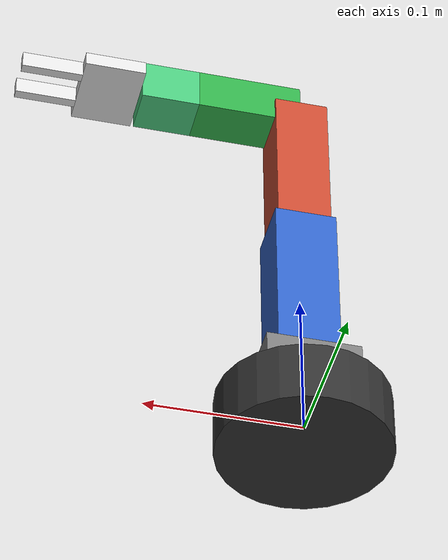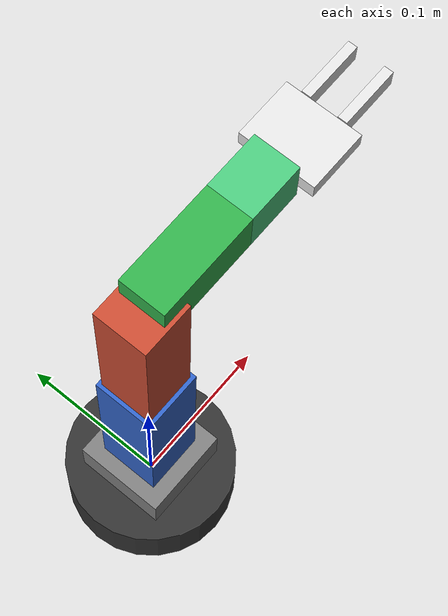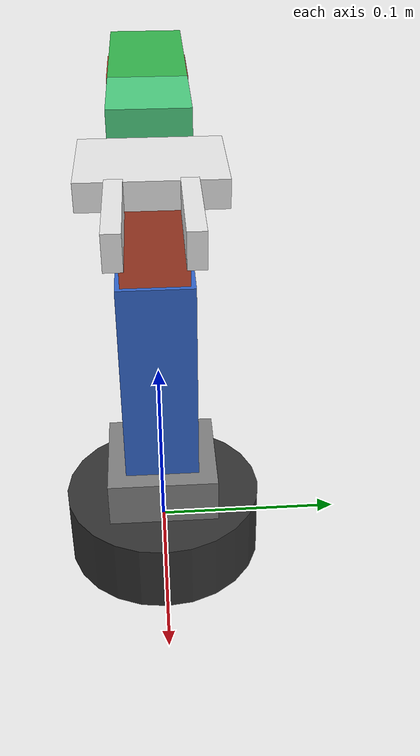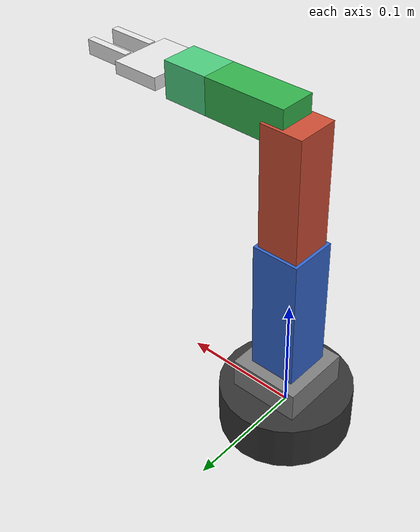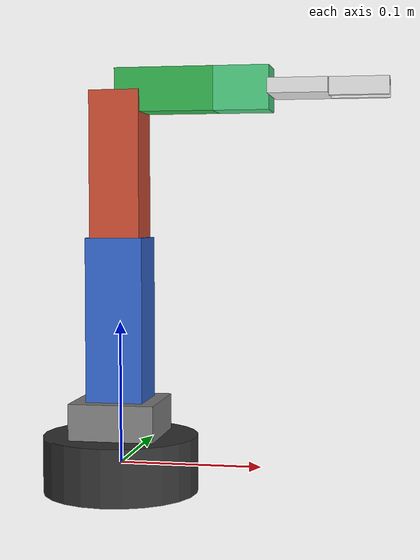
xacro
<?xml version="1.0"?>
<robot name="smallhammer" xmlns:xacro="http://www.ros.org/wiki/xacro">

  <!-- ============================================================
       PROPERTIES — measured dimensions (center-to-center)
       ============================================================ -->

  <xacro:property name="j1_j2" value="0.0254"/>   <!-- 1.0 in -->
  <xacro:property name="j2_j3" value="0.1143"/>   <!-- 4.5 in -->
  <xacro:property name="j3_j4" value="0.1016"/>   <!-- 4.0 in -->
  <xacro:property name="j4_j5" value="0.0686"/>   <!-- 2.7 in -->
  <xacro:property name="j5_j6" value="0.0381"/>   <!-- 1.5 in -->

  <xacro:property name="base_radius" value="0.055"/>
  <xacro:property name="base_length" value="0.04"/>
  <xacro:property name="base_mass" value="0.30"/>

  <xacro:property name="link1_side" value="0.06"/>
  <xacro:property name="link1_mass" value="0.10"/>

  <xacro:property name="link2_side" value="0.04"/>
  <xacro:property name="link2_mass" value="0.20"/>

  <xacro:property name="link3_side" value="0.035"/>
  <xacro:property name="link3_mass" value="0.15"/>

  <xacro:property name="link4_h" value="0.03"/>
  <xacro:property name="link4_mass" value="0.08"/>

  <xacro:property name="link5_h" value="0.03"/>
  <xacro:property name="link5_mass" value="0.06"/>

  <xacro:property name="gripper_x" value="0.04"/>
  <xacro:property name="gripper_y" value="0.05"/>
  <xacro:property name="gripper_z" value="0.01"/>
  <xacro:property name="gripper_mass" value="0.03"/>

  <xacro:property name="finger_x" value="0.04"/>
  <xacro:property name="finger_y" value="0.006"/>
  <xacro:property name="finger_z" value="0.012"/>
  <xacro:property name="finger_mass" value="0.01"/>

  <xacro:property name="rev_lower" value="-1.5708"/>
  <xacro:property name="rev_upper" value="1.5708"/>
  <xacro:property name="rev_effort" value="1.08"/>
  <xacro:property name="rev_velocity" value="6.98"/>

  <xacro:property name="grip_lower" value="0.0"/>
  <xacro:property name="grip_upper" value="0.02"/>
  <xacro:property name="grip_effort" value="5"/>
  <xacro:property name="grip_velocity" value="0.05"/>

  <!-- ============================================================
       MACROS — inertia helpers. Every ${...} closed and checked.
       ============================================================ -->

  <xacro:macro name="box_inertial" params="mass x y z ox oy oz">
    <inertial>
      <origin xyz="${ox} ${oy} ${oz}" rpy="0 0 0"/>
      <mass value="${mass}"/>
      <inertia
        ixx="${mass*(y*y+z*z)/12.0}"
        ixy="0" ixz="0"
        iyy="${mass*(x*x+z*z)/12.0}"
        iyz="0"
        izz="${mass*(x*x+y*y)/12.0}"/>
    </inertial>
  </xacro:macro>

  <xacro:macro name="cylinder_inertial" params="mass r h ox oy oz">
    <inertial>
      <origin xyz="${ox} ${oy} ${oz}" rpy="0 0 0"/>
      <mass value="${mass}"/>
      <inertia
        ixx="${mass*(3.0*r*r+h*h)/12.0}"
        ixy="0" ixz="0"
        iyy="${mass*(3.0*r*r+h*h)/12.0}"
        iyz="0"
        izz="${mass*r*r/2.0}"/>
    </inertial>
  </xacro:macro>

  <link name="base_link">
    <visual>
      <origin xyz="0 0 0" rpy="0 0 0"/>
      <geometry>
        <cylinder radius="${base_radius}" length="${base_length}"/>
      </geometry>
      <material name="base_material">
        <color rgba="0.2 0.2 0.2 1"/>
      </material>
    </visual>
    <collision>
      <origin xyz="0 0 0" rpy="0 0 0"/>
      <geometry>
        <cylinder radius="${base_radius}" length="${base_length}"/>
      </geometry>
    </collision>
    <xacro:cylinder_inertial mass="${base_mass}" r="${base_radius}" h="${base_length}" ox="0" oy="0" oz="0"/>
  </link>

  <!-- J1 - BASE ROTATION. -->
  <joint name="base_joint" type="revolute">
    <parent link="base_link"/>
    <child link="link1"/>
    <origin xyz="0 0 0.02" rpy="0 0 0"/>
    <axis xyz="0 0 1"/>
    <limit lower="${rev_lower}" upper="${rev_upper}" effort="${rev_effort}" velocity="${rev_velocity}"/>
  </joint>

  <!-- LINK 1 -->
  <link name="link1">
    <visual>
      <origin xyz="0 0 ${j1_j2/2}" rpy="0 0 0"/>
      <geometry>
        <box size="${link1_side} ${link1_side} ${j1_j2}"/>
      </geometry>
      <material name="link1_material">
        <color rgba="0.5 0.5 0.5 1"/>
      </material>
    </visual>
    <collision>
      <origin xyz="0 0 ${j1_j2/2}" rpy="0 0 0"/>
      <geometry>
        <box size="${link1_side} ${link1_side} ${j1_j2}"/>
      </geometry>
    </collision>
    <xacro:box_inertial mass="${link1_mass}" x="${link1_side}" y="${link1_side}" z="${j1_j2}" ox="0" oy="0" oz="${j1_j2/2}"/>
  </link>

  <!-- J2 - SHOULDER. -->
  <joint name="shoulder_joint" type="revolute">
    <parent link="link1"/>
    <child link="link2"/>
    <origin xyz="0 0 ${j1_j2}" rpy="0 0 0"/>
    <axis xyz="0 1 0"/>
    <limit lower="${rev_lower}" upper="${rev_upper}" effort="${rev_effort}" velocity="${rev_velocity}"/>
  </joint>

  <!-- LINK 2 - UPPER ARM -->
  <link name="link2">
    <visual>
      <origin xyz="0 0 ${j2_j3/2}" rpy="0 0 0"/>
      <geometry>
        <box size="${link2_side} ${link2_side} ${j2_j3}"/>
      </geometry>
      <material name="link2_material">
        <color rgba="0.2 0.4 0.8 1"/>
      </material>
    </visual>
    <collision>
      <origin xyz="0 0 ${j2_j3/2}" rpy="0 0 0"/>
      <geometry>
        <box size="${link2_side} ${link2_side} ${j2_j3}"/>
      </geometry>
    </collision>
    <xacro:box_inertial mass="${link2_mass}" x="${link2_side}" y="${link2_side}" z="${j2_j3}" ox="0" oy="0" oz="${j2_j3/2}"/>
  </link>

  <!-- J3 - ELBOW. Vertical arm continues from J2. -->
  <joint name="elbow_joint" type="revolute">
    <parent link="link2"/>
    <child link="link3"/>
    <origin xyz="0 0 ${j2_j3}" rpy="0 0 0"/>
    <axis xyz="0 1 0"/>
    <limit lower="${rev_lower}" upper="${rev_upper}" effort="${rev_effort}" velocity="${rev_velocity}"/>
  </joint>

  <!-- LINK 3 - FOREARM -->
  <link name="link3">
    <visual>
      <origin xyz="0 0 ${j3_j4/2}" rpy="0 0 0"/>
      <geometry>
        <box size="${link3_side} ${link3_side} ${j3_j4}"/>
      </geometry>
      <material name="link3_material">
        <color rgba="0.8 0.3 0.2 1"/>
      </material>
    </visual>
    <collision>
      <origin xyz="0 0 ${j3_j4/2}" rpy="0 0 0"/>
      <geometry>
        <box size="${link3_side} ${link3_side} ${j3_j4}"/>
      </geometry>
    </collision>
    <xacro:box_inertial mass="${link3_mass}" x="${link3_side}" y="${link3_side}" z="${j3_j4}" ox="0" oy="0" oz="${j3_j4/2}"/>
  </link>

  <!-- J4 - WRIST PITCH. -->
  <joint name="wrist_pitch_joint" type="revolute">
    <parent link="link3"/>
    <child link="link4"/>
    <origin xyz="0 0 ${j3_j4}" rpy="0 0 0"/>
    <axis xyz="0 1 0"/>
    <limit lower="${rev_lower}" upper="${rev_upper}" effort="${rev_effort}" velocity="${rev_velocity}"/>
  </joint>

  <!-- LINK 4 - WRIST PITCH SECTION -->
  <link name="link4">
    <visual>
      <origin xyz="${j4_j5/2} 0 0" rpy="0 0 0"/>
      <geometry>
        <box size="${j4_j5} ${link4_h} ${link4_h}"/>
      </geometry>
      <material name="link4_material">
        <color rgba="0.2 0.7 0.3 1"/>
      </material>
    </visual>
    <collision>
      <origin xyz="${j4_j5/2} 0 0" rpy="0 0 0"/>
      <geometry>
        <box size="${j4_j5} ${link4_h} ${link4_h}"/>
      </geometry>
    </collision>
    <xacro:box_inertial mass="${link4_mass}" x="${j4_j5}" y="${link4_h}" z="${link4_h}" ox="${j4_j5/2}" oy="0" oz="0"/>
  </link>

  <!-- J5 - WRIST ROLL.-->
  <joint name="wrist_roll_joint" type="revolute">
    <parent link="link4"/>
    <child link="link5"/>
    <origin xyz="${j4_j5} 0 0" rpy="0 0 0"/>
    <axis xyz="1 0 0"/>
    <limit lower="${rev_lower}" upper="${rev_upper}" effort="${rev_effort}" velocity="${rev_velocity}"/>
  </joint>

  <!-- LINK 5,-->
  <link name="link5">
    <visual>
      <origin xyz="${j5_j6/2} 0 0" rpy="0 0 0"/>
      <geometry>
        <box size="${j5_j6} ${link5_h} ${link5_h}"/>
      </geometry>
      <material name="link5_material">
        <color rgba="0.3 0.8 0.5 1"/>
      </material>
    </visual>
    <collision>
      <origin xyz="${j5_j6/2} 0 0" rpy="0 0 0"/>
      <geometry>
        <box size="${j5_j6} ${link5_h} ${link5_h}"/>
      </geometry>
    </collision>
    <xacro:box_inertial mass="${link5_mass}" x="${j5_j6}" y="${link5_h}" z="${link5_h}" ox="${j5_j6/2}" oy="0" oz="0"/>
  </link>

  <!-- GRIPPER BASE, fixed to link5 -->
  <link name="gripper_base">
    <visual>
      <origin xyz="${gripper_x/2} 0 0" rpy="0 0 0"/>
      <geometry>
        <box size="${gripper_x} ${gripper_y} ${gripper_z}"/>
      </geometry>
      <material name="gripper_material">
        <color rgba="0.9 0.9 0.9 1"/>
      </material>
    </visual>
    <collision>
      <origin xyz="${gripper_x/2} 0 0" rpy="0 0 0"/>
      <geometry>
        <box size="${gripper_x} ${gripper_y} ${gripper_z}"/>
      </geometry>
    </collision>
    <xacro:box_inertial mass="${gripper_mass}" x="${gripper_x}" y="${gripper_y}" z="${gripper_z}" ox="${gripper_x/2}" oy="0" oz="0"/>
  </link>

  <joint name="gripper_mount_joint" type="fixed">
    <parent link="link5"/>
    <child link="gripper_base"/>
    <origin xyz="${j5_j6} 0 0" rpy="0 0 0"/>
  </joint>

  <!-- J6 - GRIPPER. No mimic. Single independent prismatic joint. -->
  <link name="finger_left">
    <visual>
      <origin xyz="${finger_x/2} 0 0" rpy="0 0 0"/>
      <geometry>
        <box size="${finger_x} ${finger_y} ${finger_z}"/>
      </geometry>
      <material name="finger_material">
        <color rgba="0.9 0.9 0.9 1"/>
      </material>
    </visual>
    <collision>
      <origin xyz="${finger_x/2} 0 0" rpy="0 0 0"/>
      <geometry>
        <box size="${finger_x} ${finger_y} ${finger_z}"/>
      </geometry>
    </collision>
    <xacro:box_inertial mass="${finger_mass}" x="${finger_x}" y="${finger_y}" z="${finger_z}" ox="${finger_x/2}" oy="0" oz="0"/>
  </link>

  <joint name="gripper_joint" type="prismatic">
    <parent link="gripper_base"/>
    <child link="finger_left"/>
    <origin xyz="${gripper_x} 0.012 0" rpy="0 0 0"/>
    <axis xyz="0 1 0"/>
    <limit lower="${grip_lower}" upper="${grip_upper}" effort="${grip_effort}" velocity="${grip_velocity}"/>
  </joint>

  <!-- RIGHT FINGER, no mimic. Left as-is intentionally so J6
       cannot accidentally drive the rest of the arm. -->
  <link name="finger_right">
    <visual>
      <origin xyz="${finger_x/2} 0 0" rpy="0 0 0"/>
      <geometry>
        <box size="${finger_x} ${finger_y} ${finger_z}"/>
      </geometry>
      <material name="finger_right_material">
        <color rgba="0.9 0.9 0.9 1"/>
      </material>
    </visual>
    <collision>
      <origin xyz="${finger_x/2} 0 0" rpy="0 0 0"/>
      <geometry>
        <box size="${finger_x} ${finger_y} ${finger_z}"/>
      </geometry>
    </collision>
    <xacro:box_inertial mass="${finger_mass}" x="${finger_x}" y="${finger_y}" z="${finger_z}" ox="${finger_x/2}" oy="0" oz="0"/>
  </link>

  <joint name="finger_right_fixed_joint" type="fixed">
    <parent link="gripper_base"/>
    <child link="finger_right"/>
    <origin xyz="${gripper_x} -0.012 0" rpy="0 0 0"/>
  </joint>

</robot>
